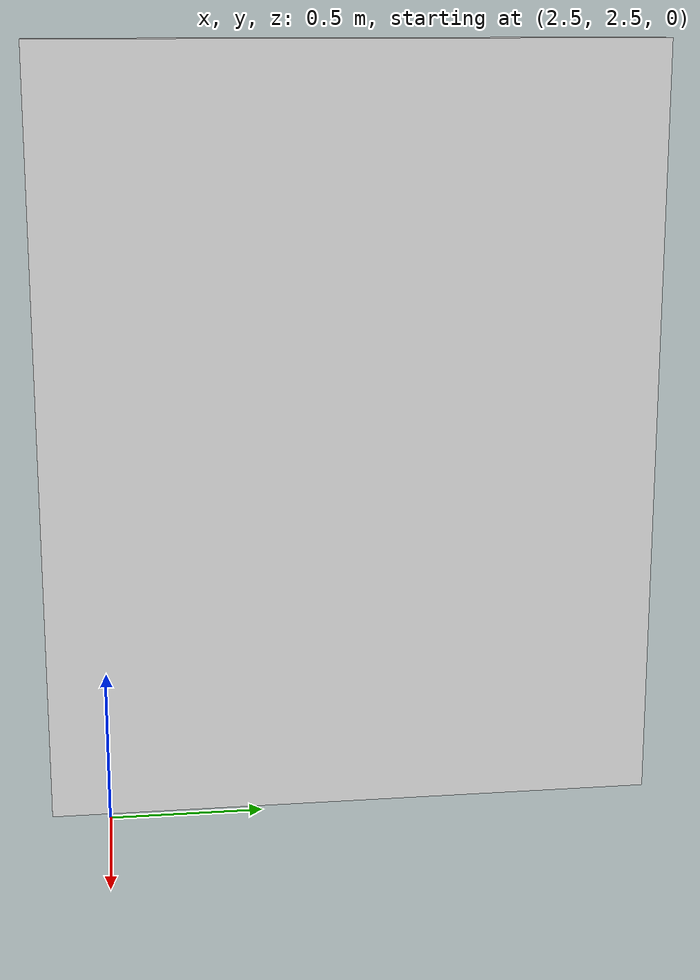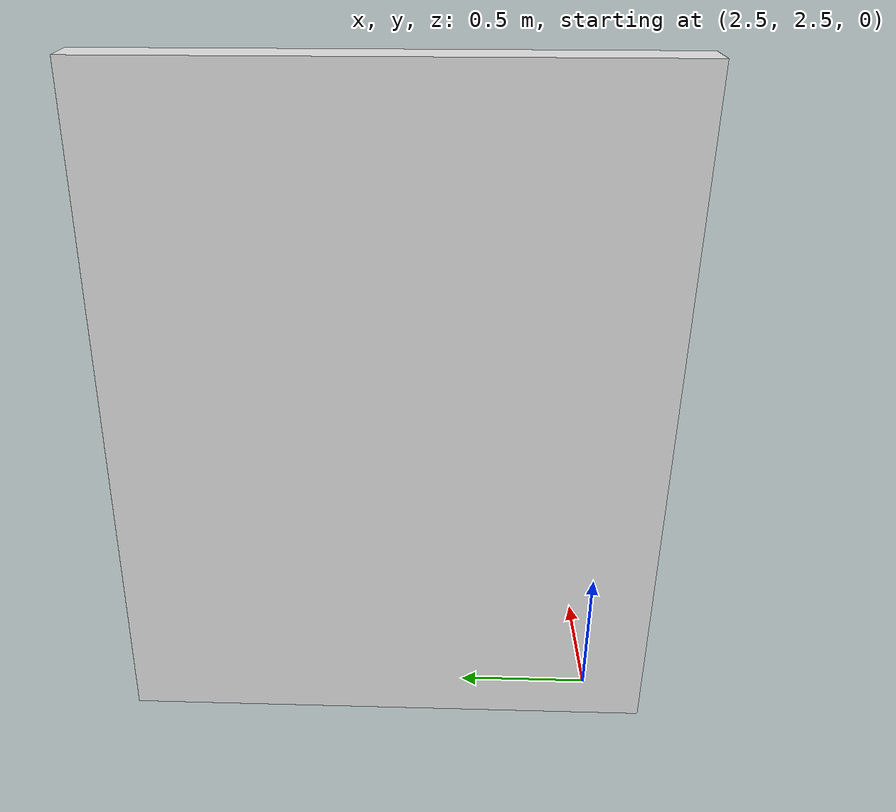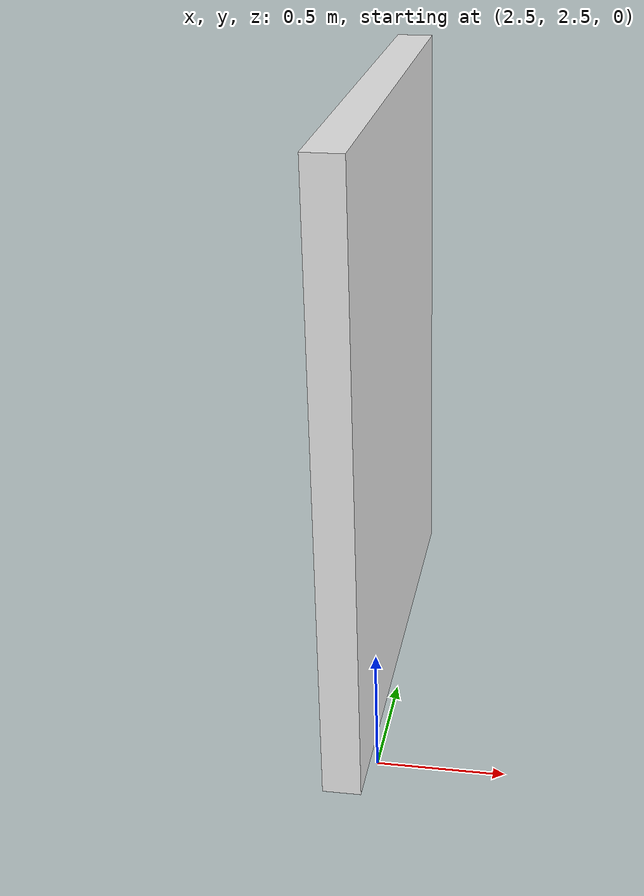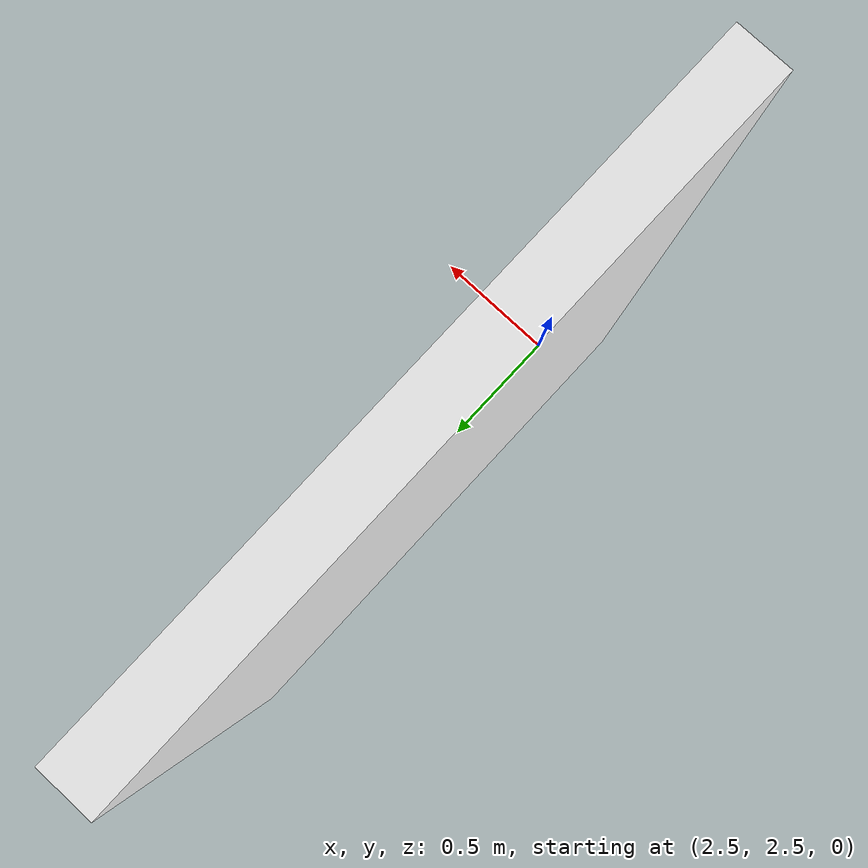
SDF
<?xml version='1.0'?>
<sdf version='1.6'>
  <model name='walls'>
    <pose frame=''>2.39208 2.30864 0 0 -0 0</pose>

    <link name='Wall_5'>
      <collision name='Wall_5_Collision'>
        <geometry>
          <box>
            <size>2 0.15 2.5</size>
          </box>
        </geometry>
        <pose frame=''>0 0 1.25 0 -0 0</pose>
      </collision>
      <visual name='Wall_5_Visual'>
        <pose frame=''>0 0 1.25 0 -0 0</pose>
        <geometry>
          <box>
            <size>2 0.15 2.5</size>
          </box>
        </geometry>
        <material>
          <script>
            <uri>file://media/materials/scripts/gazebo.material</uri>
            <name>Gazebo/White</name>
          </script>
          <ambient>1 1 1 1</ambient>
        </material>
      </visual>
      <pose frame=''>0 1 0 0 0 1.57079632679</pose>
    </link>

    <static>1</static>
  </model>
</sdf>
